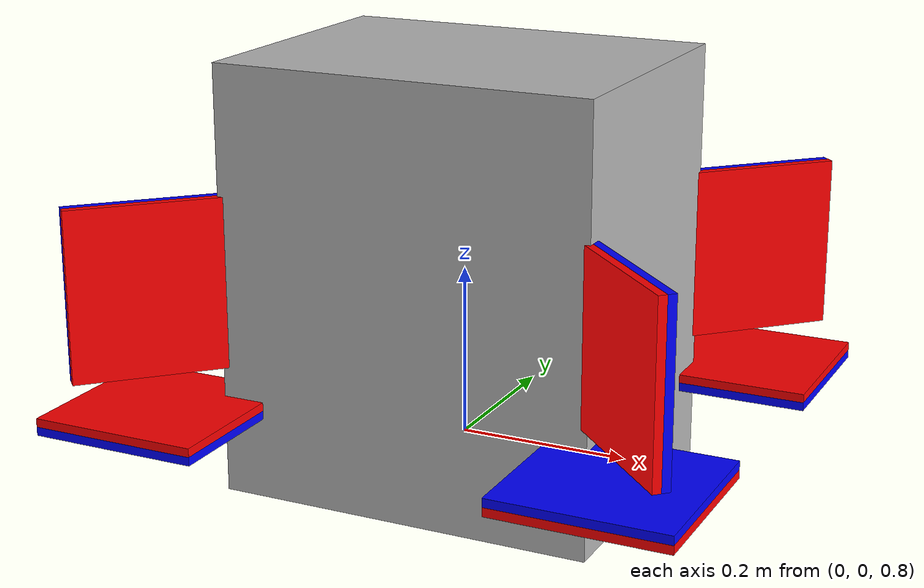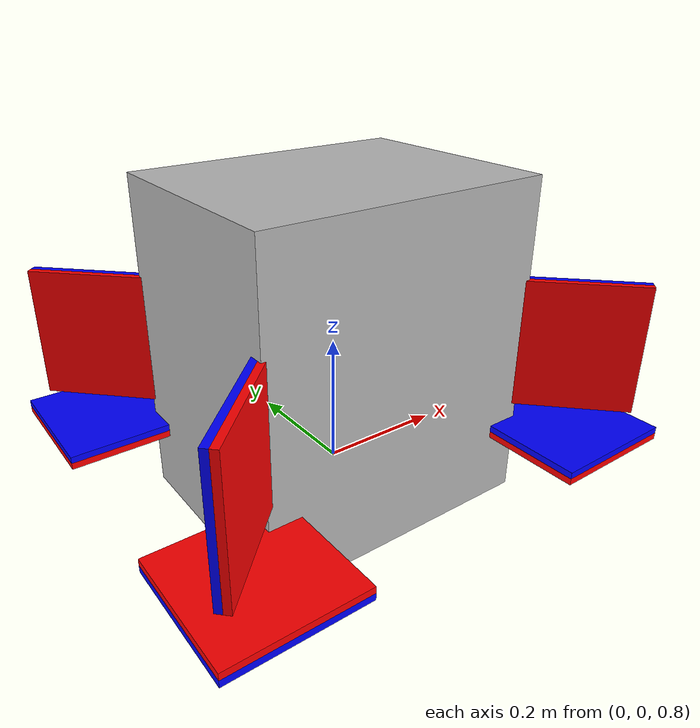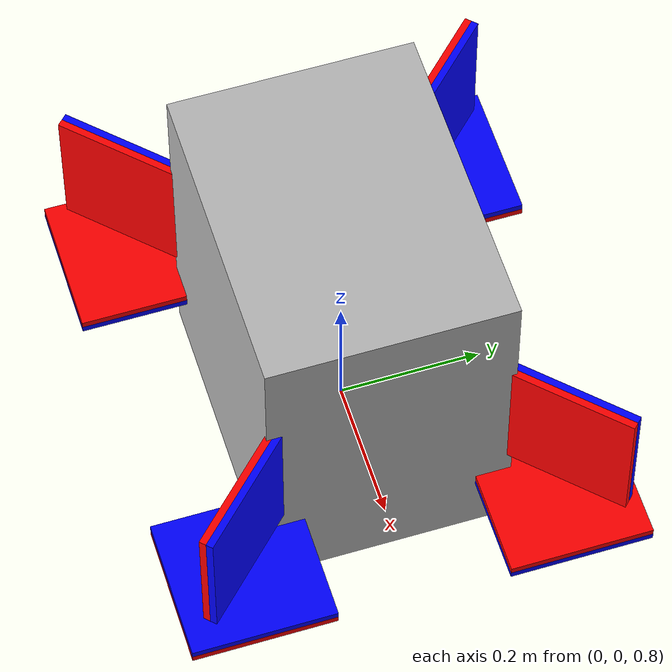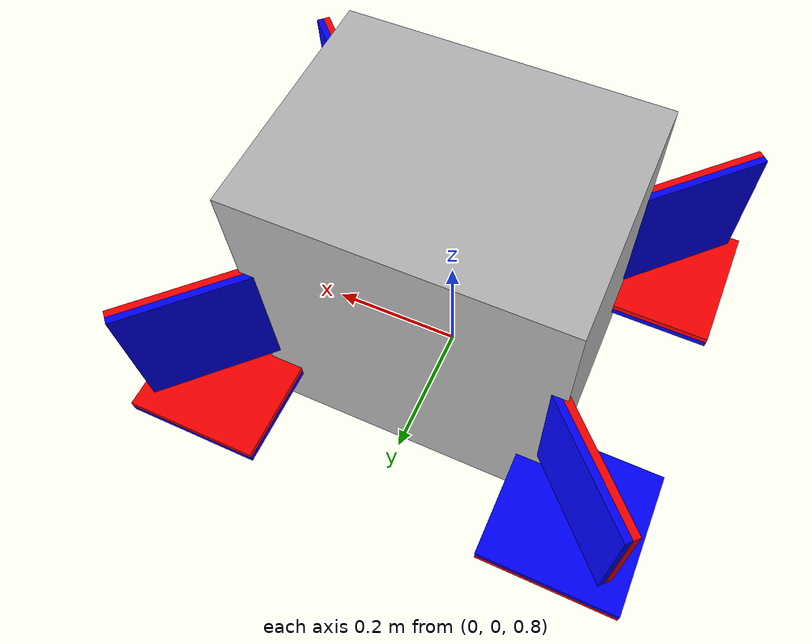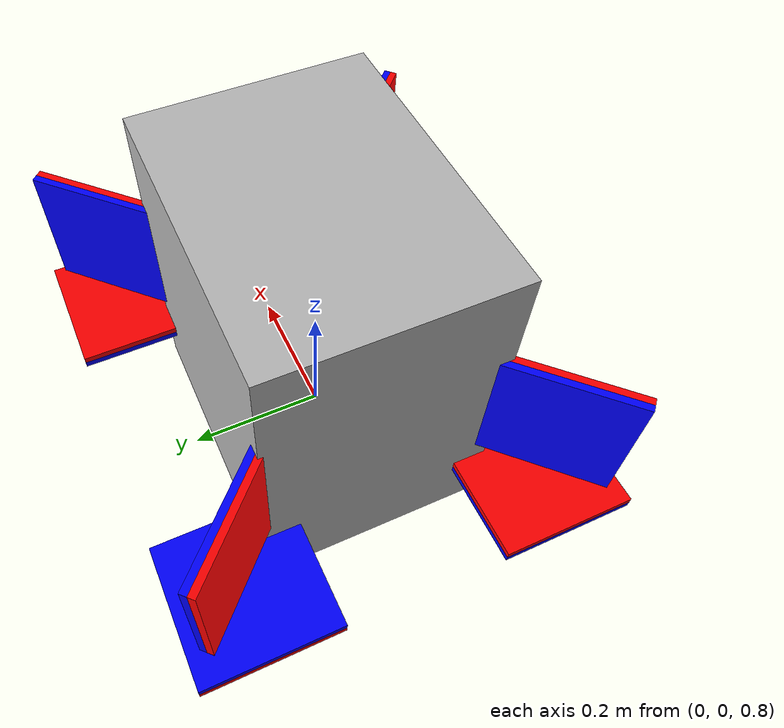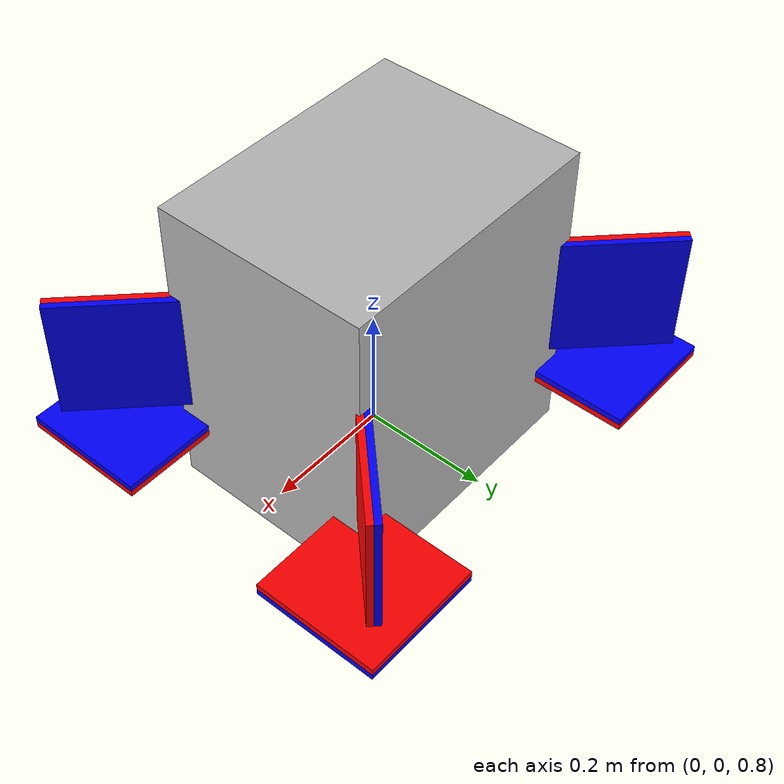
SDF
<?xml version="1.0" ?>
<sdf version="1.6">
  <world name="buoyant_auv">
    <scene>
      <!-- For turquoise ambient -->
      <ambient>0.0 1.0 1.0</ambient>
      <background>0.0 0.7 0.8</background>
    </scene>

    <physics name="1ms" type="ode">
      <max_step_size>0.001</max_step_size>
      <real_time_factor>1.0</real_time_factor>
    </physics>
    <plugin
      filename="ignition-gazebo-physics-system"
      name="ignition::gazebo::systems::Physics">
    </plugin>
    <plugin
      filename="ignition-gazebo-user-commands-system"
      name="ignition::gazebo::systems::UserCommands">
    </plugin>
    <plugin
      filename="ignition-gazebo-scene-broadcaster-system"
      name="ignition::gazebo::systems::SceneBroadcaster">
    </plugin>
    <plugin
      filename="ignition-gazebo-buoyancy-system"
      name="ignition::gazebo::systems::Buoyancy">
      <uniform_fluid_density>1000</uniform_fluid_density>
    </plugin>

    <plugin filename="libignition-gazebo-imu-system.so"
      name="ignition::gazebo::systems::Imu">
    </plugin>

    <plugin filename="libignition-gazebo-altimeter-system.so"
      name="ignition::gazebo::systems::Altimeter">
    </plugin>

    <light type="directional" name="sun">
      <cast_shadows>true</cast_shadows>
      <pose>0 0 10 0 0 0</pose>
      <diffuse>1 1 1 1</diffuse>
      <specular>0.5 0.5 0.5 1</specular>
      <attenuation>
        <range>1000</range>
        <constant>0.9</constant>
        <linear>0.01</linear>
        <quadratic>0.001</quadratic>
      </attenuation>
      <direction>-0.5 0.1 -0.9</direction>
    </light>

    <include>
      <pose>0 0 1 0 0 0</pose>
      <uri>gazebo_maritime/models/auv</uri>

      <plugin
        filename="ignition-gazebo-thruster-system"
        name="ignition::gazebo::systems::Thruster">
        <namespace>auv</namespace>
        <joint_name>thruster_1</joint_name>
        <thrust_coefficient>0.004422</thrust_coefficient>
        <fluid_density>1000</fluid_density>
        <propeller_diameter>0.2</propeller_diameter>
      </plugin>

      <plugin
        filename="ignition-gazebo-thruster-system"
        name="ignition::gazebo::systems::Thruster">
        <namespace>auv</namespace>
        <joint_name>thruster_2</joint_name>
        <thrust_coefficient>0.004422</thrust_coefficient>
        <fluid_density>1000</fluid_density>
        <propeller_diameter>0.2</propeller_diameter>
      </plugin>

      <plugin
        filename="ignition-gazebo-thruster-system"
        name="ignition::gazebo::systems::Thruster">
        <namespace>auv</namespace>
        <joint_name>thruster_3</joint_name>
        <thrust_coefficient>0.004422</thrust_coefficient>
        <fluid_density>1000</fluid_density>
        <propeller_diameter>0.2</propeller_diameter>
      </plugin>

      <plugin
        filename="ignition-gazebo-thruster-system"
        name="ignition::gazebo::systems::Thruster">
        <namespace>auv</namespace>
        <joint_name>thruster_4</joint_name>
        <thrust_coefficient>0.004422</thrust_coefficient>
        <fluid_density>1000</fluid_density>
        <propeller_diameter>0.2</propeller_diameter>
      </plugin>

      <plugin
        filename="ignition-gazebo-thruster-system"
        name="ignition::gazebo::systems::Thruster">
        <namespace>auv</namespace>
        <joint_name>thruster_5</joint_name>
        <thrust_coefficient>0.004422</thrust_coefficient>
        <fluid_density>1000</fluid_density>
        <propeller_diameter>0.2</propeller_diameter>
      </plugin>

      <plugin
        filename="ignition-gazebo-thruster-system"
        name="ignition::gazebo::systems::Thruster">
        <namespace>auv</namespace>
        <joint_name>thruster_6</joint_name>
        <thrust_coefficient>0.004422</thrust_coefficient>
        <fluid_density>1000</fluid_density>
        <propeller_diameter>0.2</propeller_diameter>
      </plugin>

      <plugin
        filename="ignition-gazebo-thruster-system"
        name="ignition::gazebo::systems::Thruster">
        <namespace>auv</namespace>
        <joint_name>thruster_7</joint_name>
        <thrust_coefficient>0.004422</thrust_coefficient>
        <fluid_density>1000</fluid_density>
        <propeller_diameter>0.2</propeller_diameter>
      </plugin>

      <plugin
        filename="ignition-gazebo-thruster-system"
        name="ignition::gazebo::systems::Thruster">
        <namespace>auv</namespace>
        <joint_name>thruster_8</joint_name>
        <thrust_coefficient>0.004422</thrust_coefficient>
        <fluid_density>1000</fluid_density>
        <propeller_diameter>0.2</propeller_diameter>
      </plugin>

      <!-- Hydrodynamics plugin-->

    </include>

  </world>
</sdf>

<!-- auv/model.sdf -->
<sdf version="1.6">
	<model name="auv">

        <link name='base_link'>
            <pose>0 0 0 0 0 0</pose>
			<inertial>
				<mass>995.2</mass>
				<inertia>
				<ixx>3.000000</ixx>
				<ixy>0.000000</ixy>
				<ixz>0.000000</ixz>
				<iyy>3.000000</iyy>
				<iyz>0.000000</iyz>
				<izz>3.000000</izz>
				</inertia>
			</inertial>
            <visual name='base_visual'>
                <geometry>
                    <box>
                        <size>0.444 0.34 0.5</size>
                    </box>
                </geometry>
            </visual>
            <collision name='base_collision'>
                <geometry>
                    <box>
                        <size>1 1 1</size>
                    </box>
                </geometry>
            </collision>
			<sensor name="imu_sensor" type="imu">
				<always_on>1</always_on>
				<update_rate>1</update_rate>
				<visualize>true</visualize>
				<topic>imu</topic>
			</sensor>
            <sensor name="depth_sensor" type="altimeter">
                <always_on>1</always_on>
				<update_rate>1</update_rate>
				<visualize>true</visualize>
				<topic>depth</topic>
            </sensor>
        </link>

        <!-- Thruster Links -->
        <link name='box_1'>
            <pose>-0.272 -0.22 -0.14 0 0 0</pose> <!-- Position adjustment needed -->
            <visual name="visual_side_1">
                <geometry>
                    <box>
                        <size>0.2 0.2 0.01</size>
                    </box>
                </geometry>
                <material>
                    <ambient>1 0 0 1</ambient>  <!-- Red color -->
                    <diffuse>1 0 0 1</diffuse>
                </material>
            </visual>
            <visual name="visual_side_2">
                <pose>0 0 -0.01 0 0 0</pose>
                <geometry>
                    <box>
                        <size>0.2 0.2 0.01</size>
                    </box>
                </geometry>
                <material>
                    <ambient>0 0 1 1</ambient>  <!-- Blue color -->
                    <diffuse>0 0 1 1</diffuse>
                </material>
            </visual>
            <collision name="collision">
                <geometry>
                    <box>
                        <size>0.2 0.01 0.2</size>
                    </box>
                </geometry>
            </collision>
        </link>

        <link name='box_2'>
            <pose>0.272 -0.22 -0.14 3.1415926536 0 0</pose> <!-- Position adjustment needed -->
            <visual name="visual_side_1">
                <geometry>
                    <box>
                        <size>0.2 0.2 0.01</size>
                    </box>
                </geometry>
                <material>
                    <ambient>1 0 0 1</ambient>  <!-- Red color -->
                    <diffuse>1 0 0 1</diffuse>
                </material>
            </visual>
            <visual name="visual_side_2">
                <pose>0 0 -0.01 0 0 0</pose>
                <geometry>
                    <box>
                        <size>0.2 0.2 0.01</size>
                    </box>
                </geometry>
                <material>
                    <ambient>0 0 1 1</ambient>  <!-- Blue color -->
                    <diffuse>0 0 1 1</diffuse>
                </material>
            </visual>
            <collision name="collision">
                <geometry>
                    <box>
                        <size>0.2 0.01 0.2</size>
                    </box>
                </geometry>
            </collision>
        </link>

        <link name='box_3'>
            <pose>0.272 0.22 -0.14 0 0 0</pose> <!-- Position adjustment needed -->
            <visual name="visual_side_1">
                <geometry>
                    <box>
                        <size>0.2 0.2 0.01</size>
                    </box>
                </geometry>
                <material>
                    <ambient>1 0 0 1</ambient>  <!-- Red color -->
                    <diffuse>1 0 0 1</diffuse>
                </material>
            </visual>
            <visual name="visual_side_2">
                <pose>0 0 -0.01 0 0 0</pose>
                <geometry>
                    <box>
                        <size>0.2 0.2 0.01</size>
                    </box>
                </geometry>
                <material>
                    <ambient>0 0 1 1</ambient>  <!-- Blue color -->
                    <diffuse>0 0 1 1</diffuse>
                </material>
            </visual>
            <collision name="collision">
                <geometry>
                    <box>
                        <size>0.2 0.01 0.2</size>
                    </box>
                </geometry>
            </collision>
        </link>

        <link name='box_4'>
            <pose>-0.272 0.22 -0.14 3.1415926536 0 0</pose> <!-- Position adjustment needed -->
            <visual name="visual_side_1">
                <geometry>
                    <box>
                        <size>0.2 0.2 0.01</size>
                    </box>
                </geometry>
                <material>
                    <ambient>1 0 0 1</ambient>  <!-- Red color -->
                    <diffuse>1 0 0 1</diffuse>
                </material>
            </visual>
            <visual name="visual_side_2">
                <pose>0 0 -0.01 0 0 0</pose>
                <geometry>
                    <box>
                        <size>0.2 0.2 0.01</size>
                    </box>
                </geometry>
                <material>
                    <ambient>0 0 1 1</ambient>  <!-- Blue color -->
                    <diffuse>0 0 1 1</diffuse>
                </material>
            </visual>
            <collision name="collision">
                <geometry>
                    <box>
                        <size>0.2 0.01 0.2</size>
                    </box>
                </geometry>
            </collision>
        </link>

		<link name='box_5'>
            <pose>-0.272 0.22 0 0 1.5707963268 -2.3561944902</pose> <!-- Position adjustment needed -->
            <visual name="visual_side_1">
                <geometry>
                    <box>
                        <size>0.2 0.2 0.01</size>
                    </box>
                </geometry>
                <material>
                    <ambient>1 0 0 1</ambient>  <!-- Red color -->
                    <diffuse>1 0 0 1</diffuse>
                </material>
            </visual>
            <visual name="visual_side_2">
                <pose>0 0 -0.01 0 0 0</pose>
                <geometry>
                    <box>
                        <size>0.2 0.2 0.01</size>
                    </box>
                </geometry>
                <material>
                    <ambient>0 0 1 1</ambient>  <!-- Blue color -->
                    <diffuse>0 0 1 1</diffuse>
                </material>
            </visual>
            <collision name="collision">
                <geometry>
                    <box>
                        <size>0.2 0.01 0.2</size>
                    </box>
                </geometry>
            </collision>
        </link>

        <link name='box_6'>
            <pose>-0.272 -0.22 0 3.1415926536 1.5707963268 2.3561944902</pose> <!-- Position adjustment needed -->
            <visual name="visual_side_1">
                <geometry>
                    <box>
                        <size>0.2 0.2 0.01</size>
                    </box>
                </geometry>
                <material>
                    <ambient>1 0 0 1</ambient>  <!-- Red color -->
                    <diffuse>1 0 0 1</diffuse>
                </material>
            </visual>
            <visual name="visual_side_2">
                <pose>0 0 -0.01 0 0 0</pose>
                <geometry>
                    <box>
                        <size>0.2 0.2 0.01</size>
                    </box>
                </geometry>
                <material>
                    <ambient>0 0 1 1</ambient>  <!-- Blue color -->
                    <diffuse>0 0 1 1</diffuse>
                </material>
            </visual>
            <collision name="collision">
                <geometry>
                    <box>
                        <size>0.2 0.01 0.2</size>
                    </box>
                </geometry>
            </collision>
        </link>

        <link name="box_7">
            <pose>0.272 -0.22 0 0 1.5707963268 -2.3561944902</pose>
            <visual name="visual_side_1">
                <geometry>
                    <box>
                        <size>0.2 0.2 0.01</size>
                    </box>
                </geometry>
                <material>
                    <ambient>1 0 0 1</ambient>  <!-- Red color -->
                    <diffuse>1 0 0 1</diffuse>
                </material>
            </visual>
            <visual name="visual_side_2">
                <pose>0 0 -0.01 0 0 0</pose>
                <geometry>
                    <box>
                        <size>0.2 0.2 0.01</size>
                    </box>
                </geometry>
                <material>
                    <ambient>0 0 1 1</ambient>  <!-- Blue color -->
                    <diffuse>0 0 1 1</diffuse>
                </material>
            </visual>
            <collision name="collision">
                <geometry>
                    <box>
                        <size>0.2 0.01 0.2</size>
                    </box>
                </geometry>
            </collision>
        </link>

		<link name='box_8'>
            <pose>0.272 0.22 0 3.1415926536 1.5707963268 2.3561944902</pose> <!-- Position adjustment needed -->
            <visual name="visual_side_1">
                <geometry>
                    <box>
                        <size>0.2 0.2 0.01</size>
                    </box>
                </geometry>
                <material>
                    <ambient>1 0 0 1</ambient>  <!-- Red color -->
                    <diffuse>1 0 0 1</diffuse>
                </material>
            </visual>
            <visual name="visual_side_2">
                <pose>0 0 -0.01 0 0 0</pose>
                <geometry>
                    <box>
                        <size>0.2 0.2 0.01</size>
                    </box>
                </geometry>
                <material>
                    <ambient>0 0 1 1</ambient>  <!-- Blue color -->
                    <diffuse>0 0 1 1</diffuse>
                </material>
            </visual>
            <collision name="collision">
                <geometry>
                    <box>
                        <size>0.2 0.01 0.2</size>
                    </box>
                </geometry>
            </collision>
        </link>

		<!-- Thruster Joints -->
		<joint name='thruster_1' type='revolute'>
			<pose>0 0 0 0 0 0</pose>
			<parent>base_link</parent>
			<child>box_1</child>
			<axis>
				<xyz>0 0 1</xyz>
                <use_parent_model_frame>1</use_parent_model_frame>
				<limit>
					<lower>-1e+12</lower>
					<upper>1e+12</upper>
					<effort>-1</effort>
					<velocity>-1</velocity>
				</limit>
			</axis>
		</joint>

		<joint name='thruster_2' type='revolute'>
			<pose>0 0 0 0 0 0</pose>
			<parent>base_link</parent>
			<child>box_2</child>
			<axis>
				<xyz>0 0 -1</xyz>
                <use_parent_model_frame>1</use_parent_model_frame>
				<limit>
					<lower>-1e+12</lower>
					<upper>1e+12</upper>
					<effort>-1</effort>
					<velocity>-1</velocity>
				</limit>
			</axis>
		</joint>

		<joint name='thruster_3' type='revolute'>
			<pose>0 0 0 0 0 0</pose>
			<parent>base_link</parent>
			<child>box_3</child>
			<axis>
				<xyz>0 0 1</xyz>
                <use_parent_model_frame>1</use_parent_model_frame>
				<limit>
					<lower>-1e+12</lower>
					<upper>1e+12</upper>
					<effort>-1</effort>
					<velocity>-1</velocity>
				</limit>
			</axis>
		</joint>

		<joint name='thruster_4' type='revolute'>
			<pose>0 0 0 0 0 0</pose>
			<parent>base_link</parent>
			<child>box_4</child>
			<axis>
				<xyz>0 0 -1</xyz>
                <use_parent_model_frame>1</use_parent_model_frame>
				<limit>
					<lower>-1e+12</lower>
					<upper>1e+12</upper>
					<effort>-1</effort>
					<velocity>-1</velocity>
				</limit>
			</axis>
		</joint>

		<joint name='thruster_5' type='revolute'>
			<pose>0 0 0 0 0 0</pose>
			<parent>base_link</parent>
			<child>box_5</child>
			<axis>
				<xyz>-1 -1 0</xyz>
                <use_parent_model_frame>1</use_parent_model_frame>
				<limit>
					<lower>-1e+12</lower>
					<upper>1e+12</upper>
					<effort>-1</effort>
					<velocity>-1</velocity>
				</limit>
			</axis>
		</joint>

		<joint name='thruster_6' type='revolute'>
			<pose>0 0 0 0 0 0</pose>
			<parent>base_link</parent>
			<child>box_6</child>
			<axis>
				<xyz>1 -1 0</xyz>
                <use_parent_model_frame>1</use_parent_model_frame>
				<limit>
					<lower>-1e+12</lower>
					<upper>1e+12</upper>
					<effort>-1</effort>
					<velocity>-1</velocity>
				</limit>
			</axis>
		</joint>

		<joint name='thruster_7' type='revolute'>
			<pose>0 0 0 0 0 0</pose>
			<parent>base_link</parent>
			<child>box_7</child>
			<axis>
				<xyz>-1 -1 0</xyz>
                <use_parent_model_frame>1</use_parent_model_frame>
				<limit>
					<lower>-1e+12</lower>
					<upper>1e+12</upper>
					<effort>-1</effort>
					<velocity>-1</velocity>
				</limit>
			</axis>
		</joint>

		<joint name='thruster_8' type='revolute'>
			<pose>0 0 0 0 0 0</pose>
			<parent>base_link</parent>
			<child>box_8</child>
			<axis>
				<xyz>1 -1 0</xyz>
                <use_parent_model_frame>1</use_parent_model_frame>
				<limit>
					<lower>-1e+12</lower>
					<upper>1e+12</upper>
					<effort>-1</effort>
					<velocity>-1</velocity>
				</limit>
			</axis>
		</joint>

        <plugin
            filename="gz-sim-pose-publisher-system"
            name="gz::sim::systems::PosePublisher">
            <publish_model_pose>true</publish_model_pose>
            <publish_link_pose>false</publish_link_pose>
            <publish_visual_pose>false</publish_visual_pose>
            <publish_collision_pose>false</publish_collision_pose>
            <publish_sensor_pose>false</publish_sensor_pose>
            <publish_nested_model_pose>true</publish_nested_model_pose>
            <update_frequency>1000</update_frequency>
        </plugin>
	</model>
</sdf>
